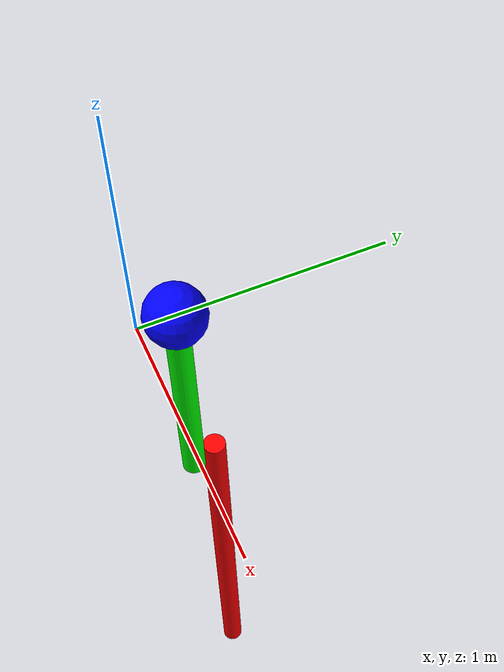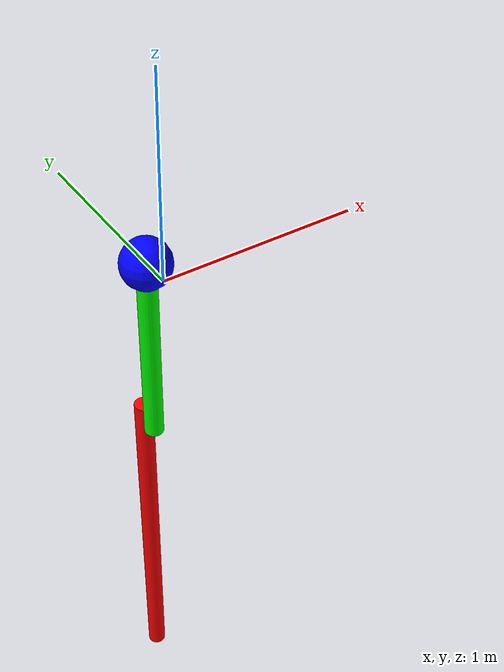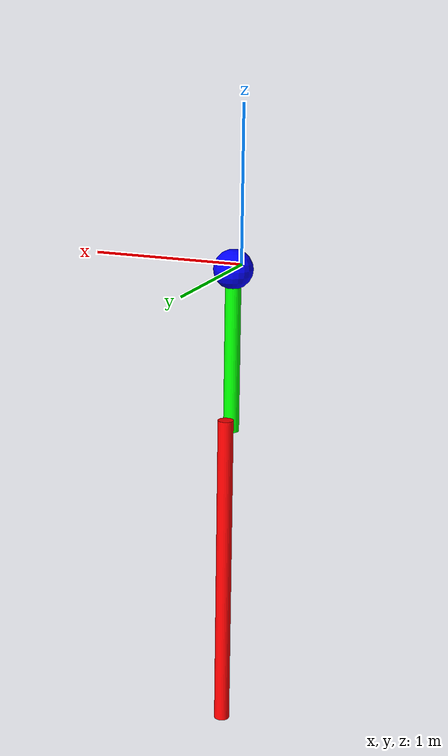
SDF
<!-- TODO: remove this file once PR #11009 lands.
This file was taken from SHA1: f8d3d0f
url: https://github.com/RobotLocomotion/drake/blob/4c62461/multibody/benchmarks/acrobot/acrobot.sdf -->

<sdf version='1.6'>
  <model name='acrobot'>
    <!-- This sdf file produces a model with the default parameters documented
         in AcrobotParameters in make_acrobot_plant.h.
         They MUST be kept in sync. -->
    <link name='Link1'>
      <!-- The origin of the Link1 frame is defined to be coincident with
           the origin of the x-z plane in the world frame. -->
      <pose>0 0.15 0 0 0 0</pose>
      <inertial>
        <pose>0 0 -0.5 0 0 0</pose>
        <mass>1</mass>
        <!-- This inertia is based on a solid cylinder with
             radius=0.001 meters and height=1.0 meters. -->
	<!-- For this model we could make izz = 0 however, sdformat will throw
	     an exception. -->
        <inertia>
          <ixx>0.083</ixx><iyy>0.083</iyy><izz>5e-7</izz>
          <ixy>0</ixy><ixz>0</ixz><iyz>0</iyz>
        </inertia>
      </inertial>
      <visual name='Link1_visual'>
        <pose>0 0 -0.5 0 0 0</pose>
        <geometry>
          <cylinder>
            <length>1.1</length>
            <radius>0.05</radius>
          </cylinder>
        </geometry>
        <material>
          <diffuse>0 1 0 1</diffuse>
        </material>
      </visual>
      <!-- A visual to show the link's pivot point -->
      <visual name='Link1_pivot_visual'>
        <!-- Pose of the sphere used for visual in Link1's frame -->
        <pose>0 0 0 0 0 0</pose>
        <geometry>
          <sphere>
            <radius>0.125</radius>
          </sphere>
        </geometry>
        <material>
          <diffuse>0 0 1 1</diffuse>
        </material>
      </visual>
    </link>
    <joint name='ShoulderJoint' type='revolute'>
      <child>Link1</child>
      <parent>world</parent>
      <axis>
        <xyz>0 1 0</xyz>
        <limit>
          <!-- Drake parses a zero effort joint as an un-actuated joint. -->
          <effort>0</effort>
        </limit>
        <dynamics>
          <damping>0.1</damping>
        </dynamics>
        <use_parent_model_frame>1</use_parent_model_frame>
      </axis>
    </joint>
    <link name='Link2'>
      <!-- The origin of the Link2 frame is defined to be coincident with
           the origin of the x-z plane in the elbow joint frame. -->
      <pose>0 0.25 -1 0 0 0</pose>
      <inertial>
        <pose>0 0 -1 0 0 0</pose>
        <mass>1</mass>
        <!-- This inertia is based on a solid cylinder with
             radius=1.0 meters and height=2.0 meters. -->
        <!-- For this model we could make izz = 0 however, sdformat will throw
             an exception. -->
        <inertia>
          <ixx>0.33</ixx><iyy>0.33</iyy><izz>5e-7</izz>
          <ixy>0</ixy><ixz>0</ixz><iyz>0</iyz>
        </inertia>
      </inertial>
      <visual name='Link2_visual'>
        <pose>0 0 -1 0 0 0</pose>
        <geometry>
          <cylinder>
            <length>2.1</length>
            <radius>0.05</radius>
          </cylinder>
        </geometry>
        <material>
          <diffuse>1 0 0 1</diffuse>
        </material>
      </visual>
    </link>
    <joint name='ElbowJoint' type='revolute'>
      <parent>Link1</parent>
      <child>Link2</child>
      <!-- Pose X_CJ of the joint frame J in the frame C of the child link -->
      <pose>0 0 0 0 0 0</pose>
      <axis>
        <xyz>0 1 0</xyz>
        <limit>
          <!-- No limit provided. sdformat defaults to -1, which we parse as
               an actuated joint. -->
        </limit>
        <dynamics>
          <damping>0.1</damping>
        </dynamics>
        <use_parent_model_frame>1</use_parent_model_frame>
      </axis>
    </joint>
  </model>
</sdf>
